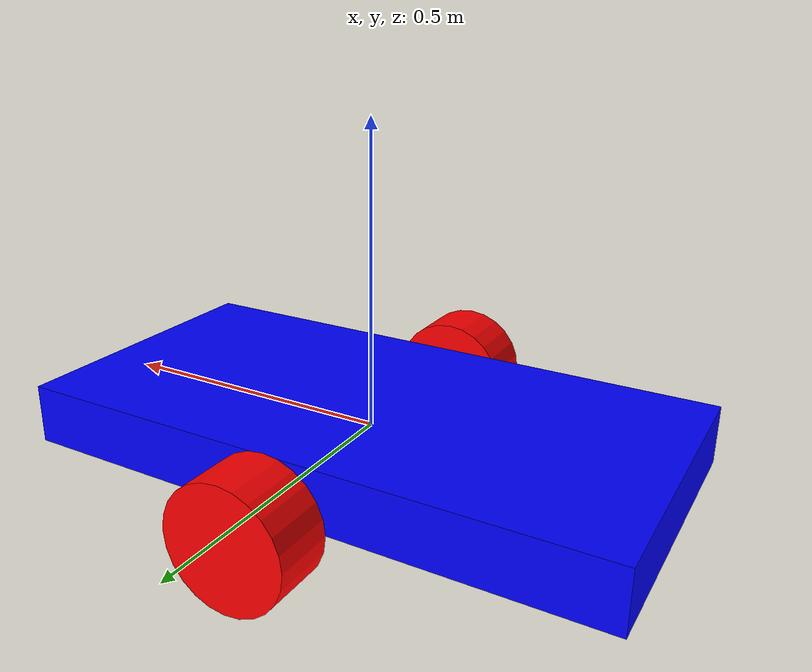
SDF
<?xml version="1.0"?>
<sdf version="1.7">

  <model name='movus' canonical_link='base_link'>
    <pose>0 0 0 0 0 0</pose>

    <!--base_link-->
    <link name='base_link'>
      <inertial>
        <!--inertial properties of the link mass, inertia matix-->
        <mass>100</mass>
        <inertia>
          <ixx>3.417</ixx>
          <ixy>0</ixy>
          <ixz>0</ixz>
          <iyy>22.667</iyy>
          <iyz>0</iyz>
          <izz>23.417</izz>
        </inertia>
      </inertial>
      <visual name='visual'>
        <geometry>
          <box>
            <size>1.0 0.5 0.1</size>
          </box>
        </geometry>
        <!--Color of the link-->
        <material>
          <ambient>0.0 0.0 1.0 1</ambient>
          <diffuse>0.0 0.0 1.0 1</diffuse>
          <specular>0.0 0.0 1.0 1</specular>
        </material>
      </visual>
      <collision name='collision'>
        <geometry>
          <box>
            <size>1.0 0.5 0.1</size>
          </box>
        </geometry>
      </collision>
    </link>

    <link name="lidar_link">
      <pose relative_to="base_link">0.55 0 0 0 0 0</pose>
      <sensor name="laser" type="gpu_lidar">
        <pose>0.0 0 0 0 0 0</pose>
        <topic>/scan</topic>
        <ray>
          <scan>
            <horizontal>
              <samples>500</samples>
              <resolution>1.0</resolution>
              <min_angle>-1.57</min_angle>
              <max_angle>1.57</max_angle>
            </horizontal>
          </scan>
          <range>
            <min>0.05</min>
            <max>40.0</max>
          </range>
        </ray>
        <always_on>true</always_on>
        <visualize>true</visualize>
        <update_rate>30.0</update_rate>
      </sensor>
    </link>

    <joint name="lidar_joint" type="fixed">
      <child>lidar_link</child>
      <parent>base_link</parent>
    </joint>

    <link name="camera_front_optical_frame">
      <pose relative_to="camera_front">0 0 0 -1.57 0 -1.57</pose>
      <sensor name="color" type="camera">
        <pose>0 0 0 0 -1.57 1.57</pose>
        <update_rate>20</update_rate>
        <always_on>1</always_on>
        <visualize>true</visualize>
        <topic>/camera/color</topic>
        <camera>
          <horizontal_fov>1.22</horizontal_fov>
          <image>
            <width>1280</width>
            <height>720</height>
            <format>R8G8B8</format>
          </image>
          <clip>
            <near>0.1</near>
            <far>50</far>
          </clip>
          <lens>
            <intrinsics>
              <!-- fx = fy = width / ( 2 * tan (hfov / 2 ) ) -->
              <fx>914</fx>
              <fy>914</fy>
              <!-- cx = ( width + 1 ) / 2 -->
              <cx>640.5</cx>
              <!-- cy = ( height + 1 ) / 2 -->
              <cy>360.5</cy>
              <s>0</s>
            </intrinsics>
          </lens>
          <noise>
            <type>gaussian</type>
            <mean>0</mean>
            <stddev>0.007</stddev>
          </noise>
        </camera>
      </sensor>
    </link>

    <link name="camera_depth_frame">
      <pose relative_to="camera_front">0 0 0 0 0 0</pose>
      <sensor name="depth" type="depth_camera">
        <pose>0 0 0 0 0 0</pose>
        <update_rate>6</update_rate>
        <always_on>1</always_on>
        <camera>
          <horizontal_fov>1.22</horizontal_fov>
          <image>
            <width>640</width>
            <height>480</height>
            <format>R_FLOAT32</format>
          </image>
          <clip>
            <near>0.1</near>
            <far>3</far>
          </clip>
          <lens>
            <intrinsics>
              <fx>421.61578369140625</fx>
              <fy>421.61578369140625</fy>
              <cx>422.2854309082031</cx>
              <cy>236.57237243652344</cy>
              <s>0</s>
            </intrinsics>
          </lens>
        </camera>
      </sensor>
    </link>

    <link name="camera_front">
      <pose relative_to="base_link">0.6 0 -0.05 0 0 0</pose>
    </link>

    <joint name="camera_front_joint" type="fixed">
      <child>camera_front</child>
      <parent>base_link</parent>
    </joint>

    <joint name="camera_front_optical_joint" type="fixed">
      <child>camera_front_optical_frame</child>
      <parent>camera_front</parent>
    </joint>

    <joint name="camera_depth_joint" type="fixed">
      <child>camera_depth_frame</child>
      <parent>camera_front</parent>
    </joint>

    <!--Left wheel-->
    <link name='left_wheel'>
      <pose relative_to="base_link">0.0 0.34 -0.02 -1.5707 0 0</pose> <!--angles are in radian-->
      <inertial>
        <mass>1</mass>
        <inertia>
          <ixx>0.043333</ixx>
          <ixy>0</ixy>
          <ixz>0</ixz>
          <iyy>0.043333</iyy>
          <iyz>0</iyz>
          <izz>0.08</izz>
        </inertia>
      </inertial>
      <visual name='visual'>
        <geometry>
          <cylinder>
            <radius>0.1</radius>
            <length>0.1</length>
          </cylinder>
        </geometry>
        <material>
          <ambient>1.0 0.0 0.0 1</ambient>
          <diffuse>1.0 0.0 0.0 1</diffuse>
          <specular>1.0 0.0 0.0 1</specular>
        </material>
      </visual>
      <collision name='collision'>
        <geometry>
          <cylinder>
            <radius>0.1</radius>
            <length>0.1</length>
          </cylinder>
        </geometry>
      </collision>
    </link>

    <!--The same as left wheel but with different position-->
    <link name='right_wheel'>
      <pose relative_to="base_link">0.0 -0.34 -0.02 -1.5707 0 0</pose> <!--angles are in radian-->
      <inertial>
        <mass>1</mass>
        <inertia>
          <ixx>0.043333</ixx>
          <ixy>0</ixy>
          <ixz>0</ixz>
          <iyy>0.043333</iyy>
          <iyz>0</iyz>
          <izz>0.08</izz>
        </inertia>
      </inertial>
      <visual name='visual'>
        <geometry>
          <cylinder>
            <radius>0.1</radius>
            <length>0.1</length>
          </cylinder>
        </geometry>
        <material>
          <ambient>1.0 0.0 0.0 1</ambient>
          <diffuse>1.0 0.0 0.0 1</diffuse>
          <specular>1.0 0.0 0.0 1</specular>
        </material>
      </visual>
      <collision name='collision'>
        <geometry>
          <cylinder>
            <radius>0.1</radius>
            <length>0.1</length>
          </cylinder>
        </geometry>
        <surface>
          <friction>
            <ode>
              <mu>1</mu>
              <mu2>1</mu2>
              <slip1>0</slip1>
              <slip2>0</slip2>
            </ode>
          </friction>
          <contact>
            <ode>
              <soft_cfm>0</soft_cfm>
              <soft_erp>0.2</soft_erp>
              <kp>1e+13</kp>
              <kd>1</kd>
              <max_vel>0.01</max_vel>
              <min_depth>0.01</min_depth>
            </ode>
          </contact>
        </surface>
      </collision>
    </link>

    <!--arbitrary frame-->
    <frame name="front_caster_frame" attached_to='base_link'>
      <pose>0.4 0 -0.07 0 0 0</pose>
    </frame>

    <!--caster wheel-->
    <link name='front_caster'>
      <pose relative_to='front_caster_frame' />
      <inertial>
        <mass>1</mass>
        <inertia>
          <ixx>0.016</ixx>
          <ixy>0</ixy>
          <ixz>0</ixz>
          <iyy>0.016</iyy>
          <iyz>0</iyz>
          <izz>0.016</izz>
        </inertia>
      </inertial>
      <visual name='visual'>
        <geometry>
          <sphere>
            <radius>0.05</radius>
          </sphere>
        </geometry>
        <material>
          <ambient>0.0 1 0.0 1</ambient>
          <diffuse>0.0 1 0.0 1</diffuse>
          <specular>0.0 1 0.0 1</specular>
        </material>
      </visual>
      <collision name='collision'>
        <geometry>
          <sphere>
            <radius>0.05</radius>
          </sphere>
        </geometry>
        <surface>
          <friction>
            <ode>
              <mu>1</mu>
              <mu2>1</mu2>
              <slip1>0</slip1>
              <slip2>0</slip2>
            </ode>
          </friction>
          <contact>
            <ode>
              <soft_cfm>0</soft_cfm>
              <soft_erp>0.2</soft_erp>
              <kp>1e+13</kp>
              <kd>1</kd>
              <max_vel>0.01</max_vel>
              <min_depth>0.01</min_depth>
            </ode>
          </contact>
        </surface>
      </collision>
    </link>

    <!--arbitrary frame-->
    <frame name="back_caster_frame" attached_to='base_link'>
      <pose>-0.4 0 -0.069 0 0 0</pose>
    </frame>

    <!--caster wheel-->
    <link name='back_caster'>
      <pose relative_to='back_caster_frame' />
      <inertial>
        <mass>1</mass>
        <inertia>
          <ixx>0.016</ixx>
          <ixy>0</ixy>
          <ixz>0</ixz>
          <iyy>0.016</iyy>
          <iyz>0</iyz>
          <izz>0.016</izz>
        </inertia>
      </inertial>
      <visual name='visual'>
        <geometry>
          <sphere>
            <radius>0.05</radius>
          </sphere>
        </geometry>
        <material>
          <ambient>0.0 1 0.0 1</ambient>
          <diffuse>0.0 1 0.0 1</diffuse>
          <specular>0.0 1 0.0 1</specular>
        </material>
      </visual>
      <collision name='collision'>
        <geometry>
          <sphere>
            <radius>0.05</radius>
          </sphere>
        </geometry>
      </collision>
    </link>

    <!--left wheel joint-->
    <joint name='left_wheel_joint' type='revolute'>
      <pose relative_to='left_wheel' />
      <parent>base_link</parent>
      <child>left_wheel</child>
      <axis>
        <xyz expressed_in='__model__'>0 1 0</xyz> <!--can be descired to any frame or even arbitrary frames-->
        <limit>
          <lower>-1.79769e+308</lower> <!--negative infinity-->
          <upper>1.79769e+308</upper> <!--positive infinity-->
        </limit>
      </axis>
    </joint>

    <!--right wheel joint-->
    <joint name='right_wheel_joint' type='revolute'>
      <pose relative_to='right_wheel' />
      <parent>base_link</parent>
      <child>right_wheel</child>
      <axis>
        <xyz expressed_in='__model__'>0 1 0</xyz>
        <limit>
          <lower>-1.79769e+308</lower> <!--negative infinity-->
          <upper>1.79769e+308</upper> <!--positive infinity-->
        </limit>
      </axis>
    </joint>

    <!--caster wheel joint-->
    <!--pose defult value is the child-->
    <joint name='back_caster_wheel' type='ball'>
      <parent>base_link</parent>
      <child>back_caster</child>
    </joint>

    <!--caster wheel joint-->
    <!--pose defult value is the child-->
    <joint name='front_caster_wheel' type='ball'>
      <parent>base_link</parent>
      <child>front_caster</child>
    </joint>

    <plugin filename="gz-sim-diff-drive-system" name="gz::sim::systems::DiffDrive">
      <left_joint>left_wheel_joint</left_joint>
      <right_joint>right_wheel_joint</right_joint>
      <wheel_separation>0.68</wheel_separation>
      <wheel_radius>0.1</wheel_radius>
      <topic>/cmd_vel</topic>
      <child_frame_id>base_link</child_frame_id>
    </plugin>

  </model>

</sdf>
